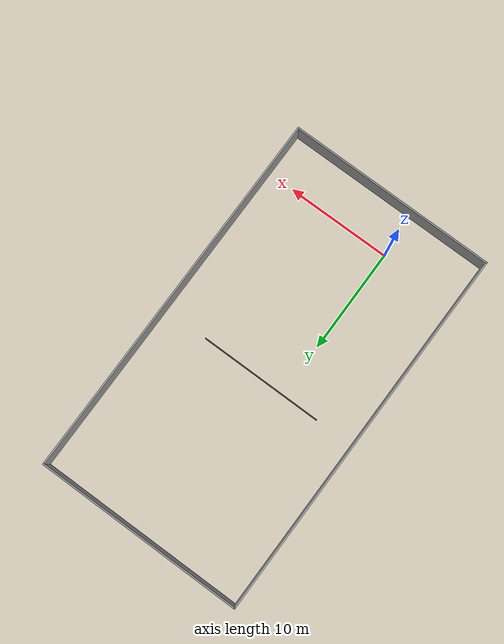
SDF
<?xml version='1.0'?>
<sdf version='1.7'>
  <model name='court'>
    <pose>2.53338 13.8394 0 0 -0 0</pose>
    <link name='Wall_11'>
      <collision name='Wall_11_Collision'>
        <geometry>
          <box>
            <size>36 0.15 2.5</size>
          </box>
        </geometry>
        <pose>0 0 1.25 0 -0 0</pose>
      </collision>
      <visual name='Wall_11_Visual'>
        <pose>0 0 1.25 0 -0 0</pose>
        <geometry>
          <box>
            <size>36 0.15 2.5</size>
          </box>
        </geometry>
        <material>
          <script>
            <uri>file://media/materials/scripts/gazebo.material</uri>
            <name>Gazebo/Grey</name>
          </script>
          <ambient>1 1 1 1</ambient>
        </material>
        <meta>
          <layer>0</layer>
        </meta>
      </visual>
      <pose>9.925 0 0 0 -0 1.5708</pose>
    </link>
    <link name='Wall_12'>
      <collision name='Wall_12_Collision'>
        <geometry>
          <box>
            <size>20 0.15 2.5</size>
          </box>
        </geometry>
        <pose>0 0 1.25 0 -0 0</pose>
      </collision>
      <visual name='Wall_12_Visual'>
        <pose>0 0 1.25 0 -0 0</pose>
        <geometry>
          <box>
            <size>20 0.15 2.5</size>
          </box>
        </geometry>
        <material>
          <script>
            <uri>file://media/materials/scripts/gazebo.material</uri>
            <name>Gazebo/Grey</name>
          </script>
          <ambient>1 1 1 1</ambient>
        </material>
        <meta>
          <layer>0</layer>
        </meta>
      </visual>
      <pose>0 17.925 0 0 -0 3.14159</pose>
    </link>
    <link name='Wall_14'>
      <collision name='Wall_14_Collision'>
        <geometry>
          <box>
            <size>11.89 0.04 1</size>
          </box>
        </geometry>
        <pose>0 0 0.5 0 -0 0</pose>
      </collision>
      <visual name='Wall_14_Visual'>
        <pose>0 0 0.5 0 -0 0</pose>
        <geometry>
          <box>
            <size>11.89 0.04 1</size>
          </box>
        </geometry>
        <material>
          <script>
            <uri>file://media/materials/scripts/gazebo.material</uri>
            <name>Gazebo/Grey</name>
          </script>
          <ambient>1 1 1 1</ambient>
        </material>
        <meta>
          <layer>0</layer>
        </meta>
      </visual>
      <pose>-0.306381 1.30956 0 0 -0 0</pose>
    </link>
    <link name='Wall_5'>
      <collision name='Wall_5_Collision'>
        <geometry>
          <box>
            <size>36 0.15 2.5</size>
          </box>
        </geometry>
        <pose>0 0 1.25 0 -0 0</pose>
      </collision>
      <visual name='Wall_5_Visual'>
        <pose>0 0 1.25 0 -0 0</pose>
        <geometry>
          <box>
            <size>36 0.15 2.5</size>
          </box>
        </geometry>
        <material>
          <script>
            <uri>file://media/materials/scripts/gazebo.material</uri>
            <name>Gazebo/Grey</name>
          </script>
          <ambient>1 1 1 1</ambient>
        </material>
        <meta>
          <layer>0</layer>
        </meta>
      </visual>
      <pose>-9.925 0 0 0 -0 1.5708</pose>
    </link>
    <link name='Wall_9'>
      <collision name='Wall_9_Collision'>
        <geometry>
          <box>
            <size>20 0.15 2.5</size>
          </box>
        </geometry>
        <pose>0 0 1.25 0 -0 0</pose>
      </collision>
      <visual name='Wall_9_Visual'>
        <pose>0 0 1.25 0 -0 0</pose>
        <geometry>
          <box>
            <size>20 0.15 2.5</size>
          </box>
        </geometry>
        <material>
          <script>
            <uri>file://media/materials/scripts/gazebo.material</uri>
            <name>Gazebo/Grey</name>
          </script>
          <ambient>1 1 1 1</ambient>
        </material>
        <meta>
          <layer>0</layer>
        </meta>
      </visual>
      <pose>0 -17.925 0 0 -0 0</pose>
    </link>
    <static>1</static>
  </model>
</sdf>
